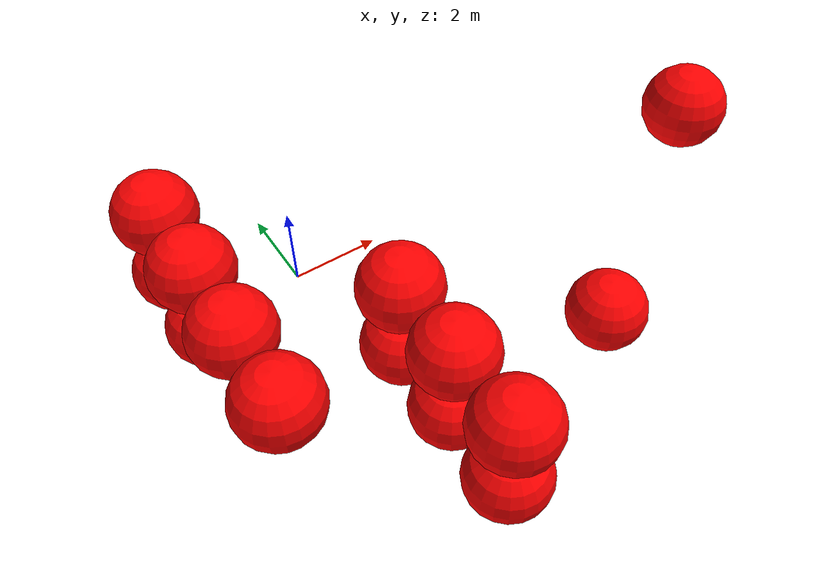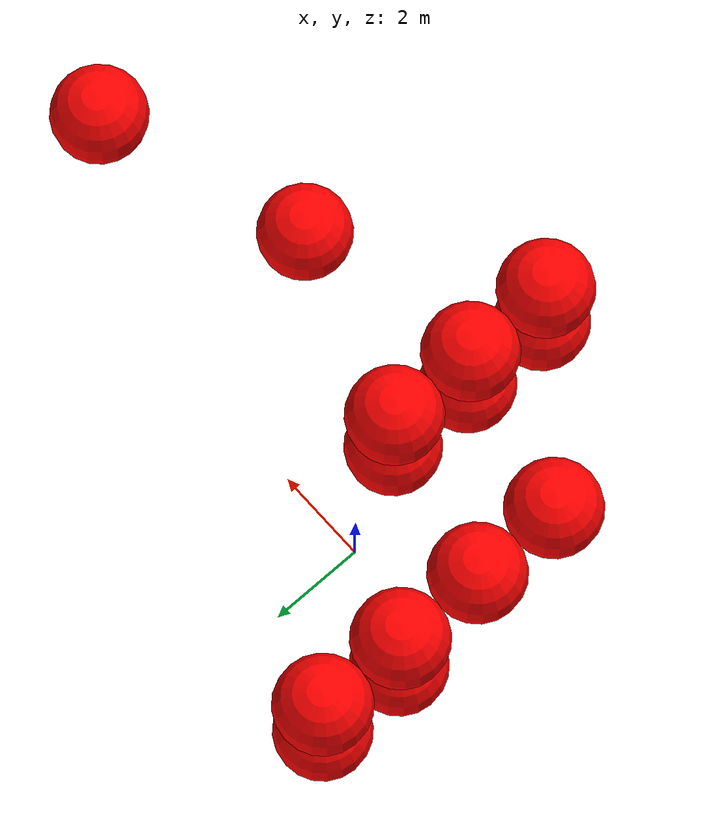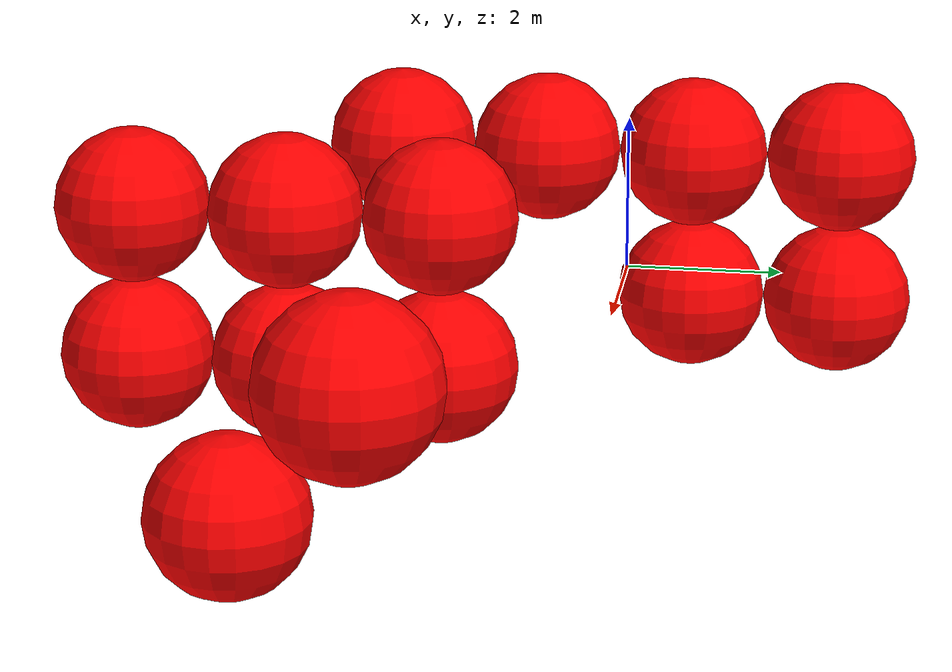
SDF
<sdf version="1.8">
 <world name="3d_world">
  <model name="obstacle_13" canonical_link="obstacle">
   <static>true</static>
   <pose relative_to="world">-2.10 0.68 -1.00 0 0 0</pose>
   <link name="obstacle">
    <pose relative_to="__model__">0.0 0 0.0 0 0 0</pose>
    <visual name="visual">
     <geometry><sphere><radius>1.00</radius></sphere></geometry>
     <material>
      <ambient>1.0 0.0 0.0 1</ambient>
      <diffuse>1.0 0.0 0.0 1</diffuse>
      <specular>1.0 0.0 0.0 1</specular>
     </material>
    </visual>
    <collision name="collision"><geometry><sphere><radius>1.00</radius></sphere></geometry></collision>
    <enable_gravity>false</enable_gravity>
   </link>
   <plugin filename="ignition-gazebo-velocity-control-system" name="ignition::gazebo::systems::VelocityControl">
    <initial_linear>0.00 0.00 0.00</initial_linear>
    <initial_angular>0 0 0</initial_angular>
   </plugin>
   <plugin filename="ignition-gazebo-odometry-publisher-system" name="ignition::gazebo::systems::OdometryPublisher">
    <dimensions>3</dimensions>
   </plugin>
  </model>
  <model name="obstacle_14" canonical_link="obstacle">
   <static>true</static>
   <pose relative_to="world">-2.10 2.68 -1.00 0 0 0</pose>
   <link name="obstacle">
    <pose relative_to="__model__">0.0 0 0.0 0 0 0</pose>
    <visual name="visual">
     <geometry><sphere><radius>1.00</radius></sphere></geometry>
     <material>
      <ambient>1.0 0.0 0.0 1</ambient>
      <diffuse>1.0 0.0 0.0 1</diffuse>
      <specular>1.0 0.0 0.0 1</specular>
     </material>
    </visual>
    <collision name="collision"><geometry><sphere><radius>1.00</radius></sphere></geometry></collision>
    <enable_gravity>false</enable_gravity>
   </link>
   <plugin filename="ignition-gazebo-velocity-control-system" name="ignition::gazebo::systems::VelocityControl">
    <initial_linear>0.00 0.00 0.00</initial_linear>
    <initial_angular>0 0 0</initial_angular>
   </plugin>
   <plugin filename="ignition-gazebo-odometry-publisher-system" name="ignition::gazebo::systems::OdometryPublisher">
    <dimensions>3</dimensions>
   </plugin>
  </model>
  <model name="obstacle_15" canonical_link="obstacle">
   <static>true</static>
   <pose relative_to="world">-2.10 -3.32 1.00 0 0 0</pose>
   <link name="obstacle">
    <pose relative_to="__model__">0.0 0 0.0 0 0 0</pose>
    <visual name="visual">
     <geometry><sphere><radius>1.00</radius></sphere></geometry>
     <material>
      <ambient>1.0 0.0 0.0 1</ambient>
      <diffuse>1.0 0.0 0.0 1</diffuse>
      <specular>1.0 0.0 0.0 1</specular>
     </material>
    </visual>
    <collision name="collision"><geometry><sphere><radius>1.00</radius></sphere></geometry></collision>
    <enable_gravity>false</enable_gravity>
   </link>
   <plugin filename="ignition-gazebo-velocity-control-system" name="ignition::gazebo::systems::VelocityControl">
    <initial_linear>0.00 0.00 0.00</initial_linear>
    <initial_angular>0 0 0</initial_angular>
   </plugin>
   <plugin filename="ignition-gazebo-odometry-publisher-system" name="ignition::gazebo::systems::OdometryPublisher">
    <dimensions>3</dimensions>
   </plugin>
  </model>
  <model name="obstacle_16" canonical_link="obstacle">
   <static>true</static>
   <pose relative_to="world">-2.10 -1.32 1.00 0 0 0</pose>
   <link name="obstacle">
    <pose relative_to="__model__">0.0 0 0.0 0 0 0</pose>
    <visual name="visual">
     <geometry><sphere><radius>1.00</radius></sphere></geometry>
     <material>
      <ambient>1.0 0.0 0.0 1</ambient>
      <diffuse>1.0 0.0 0.0 1</diffuse>
      <specular>1.0 0.0 0.0 1</specular>
     </material>
    </visual>
    <collision name="collision"><geometry><sphere><radius>1.00</radius></sphere></geometry></collision>
    <enable_gravity>false</enable_gravity>
   </link>
   <plugin filename="ignition-gazebo-velocity-control-system" name="ignition::gazebo::systems::VelocityControl">
    <initial_linear>0.00 0.00 0.00</initial_linear>
    <initial_angular>0 0 0</initial_angular>
   </plugin>
   <plugin filename="ignition-gazebo-odometry-publisher-system" name="ignition::gazebo::systems::OdometryPublisher">
    <dimensions>3</dimensions>
   </plugin>
  </model>
  <model name="obstacle_17" canonical_link="obstacle">
   <static>true</static>
   <pose relative_to="world">-2.10 0.68 1.00 0 0 0</pose>
   <link name="obstacle">
    <pose relative_to="__model__">0.0 0 0.0 0 0 0</pose>
    <visual name="visual">
     <geometry><sphere><radius>1.00</radius></sphere></geometry>
     <material>
      <ambient>1.0 0.0 0.0 1</ambient>
      <diffuse>1.0 0.0 0.0 1</diffuse>
      <specular>1.0 0.0 0.0 1</specular>
     </material>
    </visual>
    <collision name="collision"><geometry><sphere><radius>1.00</radius></sphere></geometry></collision>
    <enable_gravity>false</enable_gravity>
   </link>
   <plugin filename="ignition-gazebo-velocity-control-system" name="ignition::gazebo::systems::VelocityControl">
    <initial_linear>0.00 0.00 0.00</initial_linear>
    <initial_angular>0 0 0</initial_angular>
   </plugin>
   <plugin filename="ignition-gazebo-odometry-publisher-system" name="ignition::gazebo::systems::OdometryPublisher">
    <dimensions>3</dimensions>
   </plugin>
  </model>
  <model name="obstacle_18" canonical_link="obstacle">
   <static>true</static>
   <pose relative_to="world">-2.10 2.68 1.00 0 0 0</pose>
   <link name="obstacle">
    <pose relative_to="__model__">0.0 0 0.0 0 0 0</pose>
    <visual name="visual">
     <geometry><sphere><radius>1.00</radius></sphere></geometry>
     <material>
      <ambient>1.0 0.0 0.0 1</ambient>
      <diffuse>1.0 0.0 0.0 1</diffuse>
      <specular>1.0 0.0 0.0 1</specular>
     </material>
    </visual>
    <collision name="collision"><geometry><sphere><radius>1.00</radius></sphere></geometry></collision>
    <enable_gravity>false</enable_gravity>
   </link>
   <plugin filename="ignition-gazebo-velocity-control-system" name="ignition::gazebo::systems::VelocityControl">
    <initial_linear>0.00 0.00 0.00</initial_linear>
    <initial_angular>0 0 0</initial_angular>
   </plugin>
   <plugin filename="ignition-gazebo-odometry-publisher-system" name="ignition::gazebo::systems::OdometryPublisher">
    <dimensions>3</dimensions>
   </plugin>
  </model>
  <model name="obstacle_19" canonical_link="obstacle">
   <static>true</static>
   <pose relative_to="world">1.38 -6.25 -1.00 0 0 0</pose>
   <link name="obstacle">
    <pose relative_to="__model__">0.0 0 0.0 0 0 0</pose>
    <visual name="visual">
     <geometry><sphere><radius>1.00</radius></sphere></geometry>
     <material>
      <ambient>1.0 0.0 0.0 1</ambient>
      <diffuse>1.0 0.0 0.0 1</diffuse>
      <specular>1.0 0.0 0.0 1</specular>
     </material>
    </visual>
    <collision name="collision"><geometry><sphere><radius>1.00</radius></sphere></geometry></collision>
    <enable_gravity>false</enable_gravity>
   </link>
   <plugin filename="ignition-gazebo-velocity-control-system" name="ignition::gazebo::systems::VelocityControl">
    <initial_linear>0.00 0.00 0.00</initial_linear>
    <initial_angular>0 0 0</initial_angular>
   </plugin>
   <plugin filename="ignition-gazebo-odometry-publisher-system" name="ignition::gazebo::systems::OdometryPublisher">
    <dimensions>3</dimensions>
   </plugin>
  </model>
  <model name="obstacle_20" canonical_link="obstacle">
   <static>true</static>
   <pose relative_to="world">1.38 -4.25 -1.00 0 0 0</pose>
   <link name="obstacle">
    <pose relative_to="__model__">0.0 0 0.0 0 0 0</pose>
    <visual name="visual">
     <geometry><sphere><radius>1.00</radius></sphere></geometry>
     <material>
      <ambient>1.0 0.0 0.0 1</ambient>
      <diffuse>1.0 0.0 0.0 1</diffuse>
      <specular>1.0 0.0 0.0 1</specular>
     </material>
    </visual>
    <collision name="collision"><geometry><sphere><radius>1.00</radius></sphere></geometry></collision>
    <enable_gravity>false</enable_gravity>
   </link>
   <plugin filename="ignition-gazebo-velocity-control-system" name="ignition::gazebo::systems::VelocityControl">
    <initial_linear>0.00 0.00 0.00</initial_linear>
    <initial_angular>0 0 0</initial_angular>
   </plugin>
   <plugin filename="ignition-gazebo-odometry-publisher-system" name="ignition::gazebo::systems::OdometryPublisher">
    <dimensions>3</dimensions>
   </plugin>
  </model>
  <model name="obstacle_21" canonical_link="obstacle">
   <static>true</static>
   <pose relative_to="world">1.38 -2.25 -1.00 0 0 0</pose>
   <link name="obstacle">
    <pose relative_to="__model__">0.0 0 0.0 0 0 0</pose>
    <visual name="visual">
     <geometry><sphere><radius>1.00</radius></sphere></geometry>
     <material>
      <ambient>1.0 0.0 0.0 1</ambient>
      <diffuse>1.0 0.0 0.0 1</diffuse>
      <specular>1.0 0.0 0.0 1</specular>
     </material>
    </visual>
    <collision name="collision"><geometry><sphere><radius>1.00</radius></sphere></geometry></collision>
    <enable_gravity>false</enable_gravity>
   </link>
   <plugin filename="ignition-gazebo-velocity-control-system" name="ignition::gazebo::systems::VelocityControl">
    <initial_linear>0.00 0.00 0.00</initial_linear>
    <initial_angular>0 0 0</initial_angular>
   </plugin>
   <plugin filename="ignition-gazebo-odometry-publisher-system" name="ignition::gazebo::systems::OdometryPublisher">
    <dimensions>3</dimensions>
   </plugin>
  </model>
  <model name="obstacle_22" canonical_link="obstacle">
   <static>true</static>
   <pose relative_to="world">1.38 -6.25 1.00 0 0 0</pose>
   <link name="obstacle">
    <pose relative_to="__model__">0.0 0 0.0 0 0 0</pose>
    <visual name="visual">
     <geometry><sphere><radius>1.00</radius></sphere></geometry>
     <material>
      <ambient>1.0 0.0 0.0 1</ambient>
      <diffuse>1.0 0.0 0.0 1</diffuse>
      <specular>1.0 0.0 0.0 1</specular>
     </material>
    </visual>
    <collision name="collision"><geometry><sphere><radius>1.00</radius></sphere></geometry></collision>
    <enable_gravity>false</enable_gravity>
   </link>
   <plugin filename="ignition-gazebo-velocity-control-system" name="ignition::gazebo::systems::VelocityControl">
    <initial_linear>0.00 0.00 0.00</initial_linear>
    <initial_angular>0 0 0</initial_angular>
   </plugin>
   <plugin filename="ignition-gazebo-odometry-publisher-system" name="ignition::gazebo::systems::OdometryPublisher">
    <dimensions>3</dimensions>
   </plugin>
  </model>
  <model name="obstacle_23" canonical_link="obstacle">
   <static>true</static>
   <pose relative_to="world">1.38 -4.25 1.00 0 0 0</pose>
   <link name="obstacle">
    <pose relative_to="__model__">0.0 0 0.0 0 0 0</pose>
    <visual name="visual">
     <geometry><sphere><radius>1.00</radius></sphere></geometry>
     <material>
      <ambient>1.0 0.0 0.0 1</ambient>
      <diffuse>1.0 0.0 0.0 1</diffuse>
      <specular>1.0 0.0 0.0 1</specular>
     </material>
    </visual>
    <collision name="collision"><geometry><sphere><radius>1.00</radius></sphere></geometry></collision>
    <enable_gravity>false</enable_gravity>
   </link>
   <plugin filename="ignition-gazebo-velocity-control-system" name="ignition::gazebo::systems::VelocityControl">
    <initial_linear>0.00 0.00 0.00</initial_linear>
    <initial_angular>0 0 0</initial_angular>
   </plugin>
   <plugin filename="ignition-gazebo-odometry-publisher-system" name="ignition::gazebo::systems::OdometryPublisher">
    <dimensions>3</dimensions>
   </plugin>
  </model>
  <model name="obstacle_24" canonical_link="obstacle">
   <static>true</static>
   <pose relative_to="world">1.38 -2.25 1.00 0 0 0</pose>
   <link name="obstacle">
    <pose relative_to="__model__">0.0 0 0.0 0 0 0</pose>
    <visual name="visual">
     <geometry><sphere><radius>1.00</radius></sphere></geometry>
     <material>
      <ambient>1.0 0.0 0.0 1</ambient>
      <diffuse>1.0 0.0 0.0 1</diffuse>
      <specular>1.0 0.0 0.0 1</specular>
     </material>
    </visual>
    <collision name="collision"><geometry><sphere><radius>1.00</radius></sphere></geometry></collision>
    <enable_gravity>false</enable_gravity>
   </link>
   <plugin filename="ignition-gazebo-velocity-control-system" name="ignition::gazebo::systems::VelocityControl">
    <initial_linear>0.00 0.00 0.00</initial_linear>
    <initial_angular>0 0 0</initial_angular>
   </plugin>
   <plugin filename="ignition-gazebo-odometry-publisher-system" name="ignition::gazebo::systems::OdometryPublisher">
    <dimensions>3</dimensions>
   </plugin>
  </model>
  <model name="obstacle_25" canonical_link="obstacle">
   <static>false</static>
   <pose relative_to="world">6.06 -4.00 -1.27 0 0 0</pose>
   <link name="obstacle">
    <pose relative_to="__model__">0.0 0 0.0 0 0 0</pose>
    <visual name="visual">
     <geometry><sphere><radius>1.00</radius></sphere></geometry>
     <material>
      <ambient>1.0 0.0 0.0 1</ambient>
      <diffuse>1.0 0.0 0.0 1</diffuse>
      <specular>1.0 0.0 0.0 1</specular>
     </material>
    </visual>
    <collision name="collision"><geometry><sphere><radius>1.00</radius></sphere></geometry></collision>
    <enable_gravity>false</enable_gravity>
   </link>
   <plugin filename="ignition-gazebo-velocity-control-system" name="ignition::gazebo::systems::VelocityControl">
    <initial_linear>0.00 1.54 0.50</initial_linear>
    <initial_angular>0 0 0</initial_angular>
   </plugin>
   <plugin filename="ignition-gazebo-odometry-publisher-system" name="ignition::gazebo::systems::OdometryPublisher">
    <dimensions>3</dimensions>
   </plugin>
  </model>
  <model name="obstacle_26" canonical_link="obstacle">
   <static>false</static>
   <pose relative_to="world">9.77 -1.84 1.77 0 0 0</pose>
   <link name="obstacle">
    <pose relative_to="__model__">0.0 0 0.0 0 0 0</pose>
    <visual name="visual">
     <geometry><sphere><radius>1.00</radius></sphere></geometry>
     <material>
      <ambient>1.0 0.0 0.0 1</ambient>
      <diffuse>1.0 0.0 0.0 1</diffuse>
      <specular>1.0 0.0 0.0 1</specular>
     </material>
    </visual>
    <collision name="collision"><geometry><sphere><radius>1.00</radius></sphere></geometry></collision>
    <enable_gravity>false</enable_gravity>
   </link>
   <plugin filename="ignition-gazebo-velocity-control-system" name="ignition::gazebo::systems::VelocityControl">
    <initial_linear>0.00 1.07 -0.88</initial_linear>
    <initial_angular>0 0 0</initial_angular>
   </plugin>
   <plugin filename="ignition-gazebo-odometry-publisher-system" name="ignition::gazebo::systems::OdometryPublisher">
    <dimensions>3</dimensions>
   </plugin>
  </model>
 </world>
</sdf>
